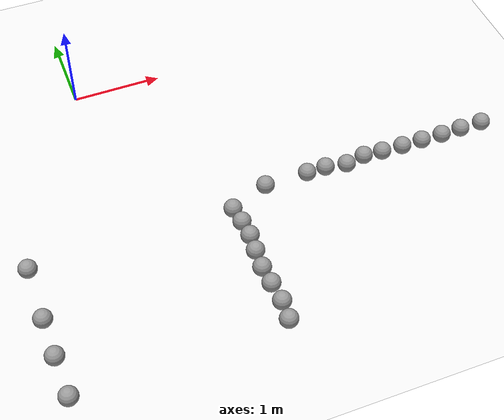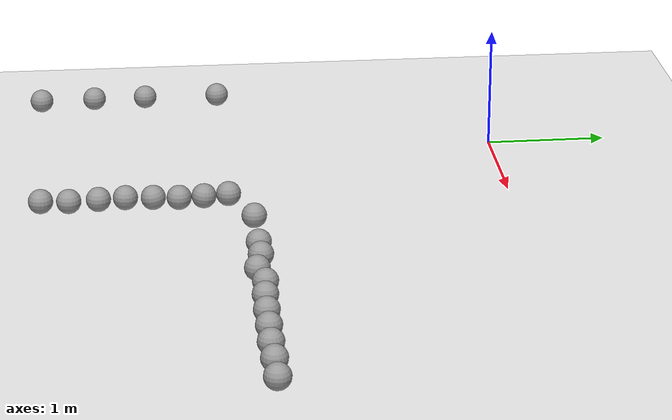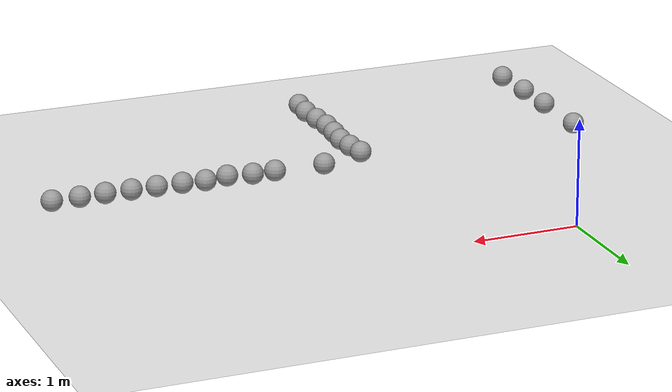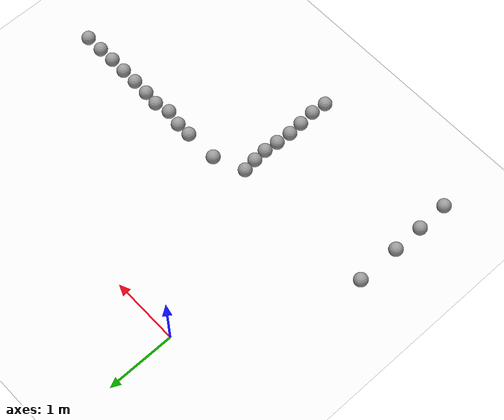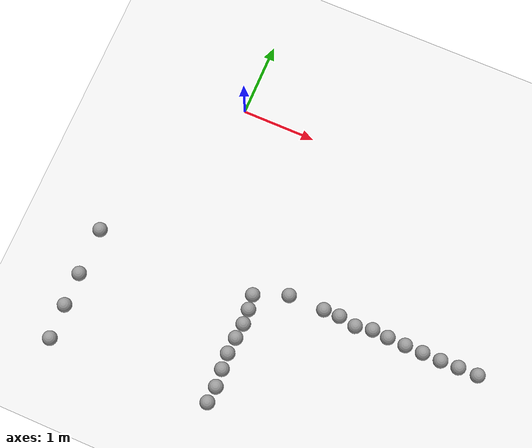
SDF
<sdf version="1.7">
 <world name="default">
  <model name="ground_plane">
   <static>1</static>
   <link name="link">
    <collision name="collision">
     <geometry><plane><normal>0 0 1</normal><size>100 100</size></plane></geometry>
     <surface>
      <contact><collide_bitmask>65535</collide_bitmask></contact>
      <friction><ode><mu>100</mu><mu2>50</mu2></ode></friction>
     </surface>
    </collision>
    <visual name="visual">
     <cast_shadows>0</cast_shadows>
     <geometry><plane><normal>0 0 1</normal><size>100 100</size></plane></geometry>
     <material>
      <script><uri>file://media/materials/scripts/gazebo.material</uri><name>Gazebo/White</name></script>
     </material>
    </visual>
   </link>
  </model>
  <model name="sphere_7">
   <link name="link_0">
    <inertial>
     <mass>1</mass>
     <inertia><ixx>0.1</ixx><ixy>0</ixy><ixz>0</ixz><iyy>0.1</iyy><iyz>0</iyz><izz>0.1</izz></inertia>
    </inertial>
    <visual name="visual">
     <geometry><sphere><radius>0.1</radius></sphere></geometry>
     <material>
      <lighting>1</lighting>
      <script><uri>file://media/materials/scripts/gazebo.material</uri><name>Gazebo/Grey</name></script>
      <shader type="pixel"><normal_map>__default__</normal_map></shader>
      <ambient>0.3 0.3 0.3 1</ambient>
      <diffuse>0.7 0.7 0.7 1</diffuse>
      <specular>0.01 0.01 0.01 1</specular>
      <emissive>0 0 0 1</emissive>
     </material>
    </visual>
    <collision name="collision">
     <geometry><sphere><radius>0.1</radius></sphere></geometry>
     <surface>
      <friction>
       <ode><mu>1</mu><mu2>1</mu2><fdir1>0 0 0</fdir1><slip1>0</slip1><slip2>0</slip2></ode>
       <torsional>
        <coefficient>1</coefficient>
        <patch_radius>0</patch_radius>
        <surface_radius>0</surface_radius>
        <use_patch_radius>1</use_patch_radius>
        <ode><slip>0</slip></ode>
       </torsional>
      </friction>
      <bounce><restitution_coefficient>0</restitution_coefficient><threshold>1e+06</threshold></bounce>
      <contact>
       <collide_without_contact>0</collide_without_contact>
       <collide_without_contact_bitmask>1</collide_without_contact_bitmask>
       <collide_bitmask>1</collide_bitmask>
       <ode>
        <soft_cfm>0</soft_cfm>
        <soft_erp>0.2</soft_erp>
        <kp>1e+13</kp>
        <kd>1</kd>
        <max_vel>0.01</max_vel>
        <min_depth>0</min_depth>
       </ode>
       <bullet>
        <split_impulse>1</split_impulse>
        <split_impulse_penetration_threshold>-0.01</split_impulse_penetration_threshold>
        <soft_cfm>0</soft_cfm>
        <soft_erp>0.2</soft_erp>
        <kp>1e+13</kp>
        <kd>1</kd>
       </bullet>
      </contact>
     </surface>
    </collision>
   </link>
   <static>0</static>
   <pose>-1.07358 -3.84349 0.1 0 -0 0</pose>
  </model>
  <model name="sphere_9">
   <link name="link_0">
    <inertial>
     <mass>1</mass>
     <inertia><ixx>0.1</ixx><ixy>0</ixy><ixz>0</ixz><iyy>0.1</iyy><iyz>0</iyz><izz>0.1</izz></inertia>
    </inertial>
    <visual name="visual">
     <geometry><sphere><radius>0.1</radius></sphere></geometry>
     <material>
      <lighting>1</lighting>
      <script><uri>file://media/materials/scripts/gazebo.material</uri><name>Gazebo/Grey</name></script>
      <shader type="pixel"><normal_map>__default__</normal_map></shader>
      <ambient>0.3 0.3 0.3 1</ambient>
      <diffuse>0.7 0.7 0.7 1</diffuse>
      <specular>0.01 0.01 0.01 1</specular>
      <emissive>0 0 0 1</emissive>
     </material>
    </visual>
    <collision name="collision">
     <geometry><sphere><radius>0.1</radius></sphere></geometry>
     <surface>
      <friction>
       <ode><mu>1</mu><mu2>1</mu2><fdir1>0 0 0</fdir1><slip1>0</slip1><slip2>0</slip2></ode>
       <torsional>
        <coefficient>1</coefficient>
        <patch_radius>0</patch_radius>
        <surface_radius>0</surface_radius>
        <use_patch_radius>1</use_patch_radius>
        <ode><slip>0</slip></ode>
       </torsional>
      </friction>
      <bounce><restitution_coefficient>0</restitution_coefficient><threshold>1e+06</threshold></bounce>
      <contact>
       <collide_without_contact>0</collide_without_contact>
       <collide_without_contact_bitmask>1</collide_without_contact_bitmask>
       <collide_bitmask>1</collide_bitmask>
       <ode>
        <soft_cfm>0</soft_cfm>
        <soft_erp>0.2</soft_erp>
        <kp>1e+13</kp>
        <kd>1</kd>
        <max_vel>0.01</max_vel>
        <min_depth>0</min_depth>
       </ode>
       <bullet>
        <split_impulse>1</split_impulse>
        <split_impulse_penetration_threshold>-0.01</split_impulse_penetration_threshold>
        <soft_cfm>0</soft_cfm>
        <soft_erp>0.2</soft_erp>
        <kp>1e+13</kp>
        <kd>1</kd>
       </bullet>
      </contact>
     </surface>
    </collision>
   </link>
   <static>0</static>
   <pose>-1.08701 -3.37767 0.1 0 -0 0</pose>
  </model>
  <model name="sphere_11">
   <link name="link_0">
    <inertial>
     <mass>1</mass>
     <inertia><ixx>0.1</ixx><ixy>0</ixy><ixz>0</ixz><iyy>0.1</iyy><iyz>0</iyz><izz>0.1</izz></inertia>
    </inertial>
    <visual name="visual">
     <geometry><sphere><radius>0.1</radius></sphere></geometry>
     <material>
      <lighting>1</lighting>
      <script><uri>file://media/materials/scripts/gazebo.material</uri><name>Gazebo/Grey</name></script>
      <shader type="pixel"><normal_map>__default__</normal_map></shader>
      <ambient>0.3 0.3 0.3 1</ambient>
      <diffuse>0.7 0.7 0.7 1</diffuse>
      <specular>0.01 0.01 0.01 1</specular>
      <emissive>0 0 0 1</emissive>
     </material>
    </visual>
    <collision name="collision">
     <geometry><sphere><radius>0.1</radius></sphere></geometry>
     <surface>
      <friction>
       <ode><mu>1</mu><mu2>1</mu2><fdir1>0 0 0</fdir1><slip1>0</slip1><slip2>0</slip2></ode>
       <torsional>
        <coefficient>1</coefficient>
        <patch_radius>0</patch_radius>
        <surface_radius>0</surface_radius>
        <use_patch_radius>1</use_patch_radius>
        <ode><slip>0</slip></ode>
       </torsional>
      </friction>
      <bounce><restitution_coefficient>0</restitution_coefficient><threshold>1e+06</threshold></bounce>
      <contact>
       <collide_without_contact>0</collide_without_contact>
       <collide_without_contact_bitmask>1</collide_without_contact_bitmask>
       <collide_bitmask>1</collide_bitmask>
       <ode>
        <soft_cfm>0</soft_cfm>
        <soft_erp>0.2</soft_erp>
        <kp>1e+13</kp>
        <kd>1</kd>
        <max_vel>0.01</max_vel>
        <min_depth>0</min_depth>
       </ode>
       <bullet>
        <split_impulse>1</split_impulse>
        <split_impulse_penetration_threshold>-0.01</split_impulse_penetration_threshold>
        <soft_cfm>0</soft_cfm>
        <soft_erp>0.2</soft_erp>
        <kp>1e+13</kp>
        <kd>1</kd>
       </bullet>
      </contact>
     </surface>
    </collision>
   </link>
   <static>0</static>
   <pose>-1.09082 -2.92679 0.1 0 -0 0</pose>
  </model>
  <model name="sphere_14">
   <link name="link_0">
    <inertial>
     <mass>1</mass>
     <inertia><ixx>0.1</ixx><ixy>0</ixy><ixz>0</ixz><iyy>0.1</iyy><iyz>0</iyz><izz>0.1</izz></inertia>
    </inertial>
    <visual name="visual">
     <geometry><sphere><radius>0.1</radius></sphere></geometry>
     <material>
      <lighting>1</lighting>
      <script><uri>file://media/materials/scripts/gazebo.material</uri><name>Gazebo/Grey</name></script>
      <shader type="pixel"><normal_map>__default__</normal_map></shader>
      <ambient>0.3 0.3 0.3 1</ambient>
      <diffuse>0.7 0.7 0.7 1</diffuse>
      <specular>0.01 0.01 0.01 1</specular>
      <emissive>0 0 0 1</emissive>
     </material>
    </visual>
    <collision name="collision">
     <geometry><sphere><radius>0.1</radius></sphere></geometry>
     <surface>
      <friction>
       <ode><mu>1</mu><mu2>1</mu2><fdir1>0 0 0</fdir1><slip1>0</slip1><slip2>0</slip2></ode>
       <torsional>
        <coefficient>1</coefficient>
        <patch_radius>0</patch_radius>
        <surface_radius>0</surface_radius>
        <use_patch_radius>1</use_patch_radius>
        <ode><slip>0</slip></ode>
       </torsional>
      </friction>
      <bounce><restitution_coefficient>0</restitution_coefficient><threshold>1e+06</threshold></bounce>
      <contact>
       <collide_without_contact>0</collide_without_contact>
       <collide_without_contact_bitmask>1</collide_without_contact_bitmask>
       <collide_bitmask>1</collide_bitmask>
       <ode>
        <soft_cfm>0</soft_cfm>
        <soft_erp>0.2</soft_erp>
        <kp>1e+13</kp>
        <kd>1</kd>
        <max_vel>0.01</max_vel>
        <min_depth>0</min_depth>
       </ode>
       <bullet>
        <split_impulse>1</split_impulse>
        <split_impulse_penetration_threshold>-0.01</split_impulse_penetration_threshold>
        <soft_cfm>0</soft_cfm>
        <soft_erp>0.2</soft_erp>
        <kp>1e+13</kp>
        <kd>1</kd>
       </bullet>
      </contact>
     </surface>
    </collision>
   </link>
   <static>0</static>
   <pose>-1.09015 -2.2869 0.1 0.054807 -0.004576 0.000566</pose>
  </model>
  <model name="sphere_34">
   <link name="link_0">
    <inertial>
     <mass>1</mass>
     <inertia><ixx>0.1</ixx><ixy>0</ixy><ixz>0</ixz><iyy>0.1</iyy><iyz>0</iyz><izz>0.1</izz></inertia>
    </inertial>
    <visual name="visual">
     <geometry><sphere><radius>0.1</radius></sphere></geometry>
     <material>
      <lighting>1</lighting>
      <script><uri>file://media/materials/scripts/gazebo.material</uri><name>Gazebo/Grey</name></script>
      <shader type="pixel"><normal_map>__default__</normal_map></shader>
      <ambient>0.3 0.3 0.3 1</ambient>
      <diffuse>0.7 0.7 0.7 1</diffuse>
      <specular>0.01 0.01 0.01 1</specular>
      <emissive>0 0 0 1</emissive>
     </material>
    </visual>
    <collision name="collision">
     <geometry><sphere><radius>0.1</radius></sphere></geometry>
     <surface>
      <friction>
       <ode><mu>1</mu><mu2>1</mu2><fdir1>0 0 0</fdir1><slip1>0</slip1><slip2>0</slip2></ode>
       <torsional>
        <coefficient>1</coefficient>
        <patch_radius>0</patch_radius>
        <surface_radius>0</surface_radius>
        <use_patch_radius>1</use_patch_radius>
        <ode><slip>0</slip></ode>
       </torsional>
      </friction>
      <bounce><restitution_coefficient>0</restitution_coefficient><threshold>1e+06</threshold></bounce>
      <contact>
       <collide_without_contact>0</collide_without_contact>
       <collide_without_contact_bitmask>1</collide_without_contact_bitmask>
       <collide_bitmask>1</collide_bitmask>
       <ode>
        <soft_cfm>0</soft_cfm>
        <soft_erp>0.2</soft_erp>
        <kp>1e+13</kp>
        <kd>1</kd>
        <max_vel>0.01</max_vel>
        <min_depth>0</min_depth>
       </ode>
       <bullet>
        <split_impulse>1</split_impulse>
        <split_impulse_penetration_threshold>-0.01</split_impulse_penetration_threshold>
        <soft_cfm>0</soft_cfm>
        <soft_erp>0.2</soft_erp>
        <kp>1e+13</kp>
        <kd>1</kd>
       </bullet>
      </contact>
     </surface>
    </collision>
   </link>
   <static>0</static>
   <pose>1.10487 -2.29479 0.1 0.017207 -0.001358 0.002524</pose>
  </model>
  <model name="sphere_35">
   <link name="link_0">
    <inertial>
     <mass>1</mass>
     <inertia><ixx>0.1</ixx><ixy>0</ixy><ixz>0</ixz><iyy>0.1</iyy><iyz>0</iyz><izz>0.1</izz></inertia>
    </inertial>
    <visual name="visual">
     <geometry><sphere><radius>0.1</radius></sphere></geometry>
     <material>
      <lighting>1</lighting>
      <script><uri>file://media/materials/scripts/gazebo.material</uri><name>Gazebo/Grey</name></script>
      <shader type="pixel"><normal_map>__default__</normal_map></shader>
      <ambient>0.3 0.3 0.3 1</ambient>
      <diffuse>0.7 0.7 0.7 1</diffuse>
      <specular>0.01 0.01 0.01 1</specular>
      <emissive>0 0 0 1</emissive>
     </material>
    </visual>
    <collision name="collision">
     <geometry><sphere><radius>0.1</radius></sphere></geometry>
     <surface>
      <friction>
       <ode><mu>1</mu><mu2>1</mu2><fdir1>0 0 0</fdir1><slip1>0</slip1><slip2>0</slip2></ode>
       <torsional>
        <coefficient>1</coefficient>
        <patch_radius>0</patch_radius>
        <surface_radius>0</surface_radius>
        <use_patch_radius>1</use_patch_radius>
        <ode><slip>0</slip></ode>
       </torsional>
      </friction>
      <bounce><restitution_coefficient>0</restitution_coefficient><threshold>1e+06</threshold></bounce>
      <contact>
       <collide_without_contact>0</collide_without_contact>
       <collide_without_contact_bitmask>1</collide_without_contact_bitmask>
       <collide_bitmask>1</collide_bitmask>
       <ode>
        <soft_cfm>0</soft_cfm>
        <soft_erp>0.2</soft_erp>
        <kp>1e+13</kp>
        <kd>1</kd>
        <max_vel>0.01</max_vel>
        <min_depth>0</min_depth>
       </ode>
       <bullet>
        <split_impulse>1</split_impulse>
        <split_impulse_penetration_threshold>-0.01</split_impulse_penetration_threshold>
        <soft_cfm>0</soft_cfm>
        <soft_erp>0.2</soft_erp>
        <kp>1e+13</kp>
        <kd>1</kd>
       </bullet>
      </contact>
     </surface>
    </collision>
   </link>
   <static>0</static>
   <pose>1.1309 -2.49326 0.1 -0.103663 0.025602 0.030256</pose>
  </model>
  <model name="sphere_36">
   <link name="link_0">
    <inertial>
     <mass>1</mass>
     <inertia><ixx>0.1</ixx><ixy>0</ixy><ixz>0</ixz><iyy>0.1</iyy><iyz>0</iyz><izz>0.1</izz></inertia>
    </inertial>
    <visual name="visual">
     <geometry><sphere><radius>0.1</radius></sphere></geometry>
     <material>
      <lighting>1</lighting>
      <script><uri>file://media/materials/scripts/gazebo.material</uri><name>Gazebo/Grey</name></script>
      <shader type="pixel"><normal_map>__default__</normal_map></shader>
      <ambient>0.3 0.3 0.3 1</ambient>
      <diffuse>0.7 0.7 0.7 1</diffuse>
      <specular>0.01 0.01 0.01 1</specular>
      <emissive>0 0 0 1</emissive>
     </material>
    </visual>
    <collision name="collision">
     <geometry><sphere><radius>0.1</radius></sphere></geometry>
     <surface>
      <friction>
       <ode><mu>1</mu><mu2>1</mu2><fdir1>0 0 0</fdir1><slip1>0</slip1><slip2>0</slip2></ode>
       <torsional>
        <coefficient>1</coefficient>
        <patch_radius>0</patch_radius>
        <surface_radius>0</surface_radius>
        <use_patch_radius>1</use_patch_radius>
        <ode><slip>0</slip></ode>
       </torsional>
      </friction>
      <bounce><restitution_coefficient>0</restitution_coefficient><threshold>1e+06</threshold></bounce>
      <contact>
       <collide_without_contact>0</collide_without_contact>
       <collide_without_contact_bitmask>1</collide_without_contact_bitmask>
       <collide_bitmask>1</collide_bitmask>
       <ode>
        <soft_cfm>0</soft_cfm>
        <soft_erp>0.2</soft_erp>
        <kp>1e+13</kp>
        <kd>1</kd>
        <max_vel>0.01</max_vel>
        <min_depth>0</min_depth>
       </ode>
       <bullet>
        <split_impulse>1</split_impulse>
        <split_impulse_penetration_threshold>-0.01</split_impulse_penetration_threshold>
        <soft_cfm>0</soft_cfm>
        <soft_erp>0.2</soft_erp>
        <kp>1e+13</kp>
        <kd>1</kd>
       </bullet>
      </contact>
     </surface>
    </collision>
   </link>
   <static>0</static>
   <pose>1.14408 -2.693 0.1 0.003598 0.046404 0.000405</pose>
  </model>
  <model name="sphere_37">
   <link name="link_0">
    <inertial>
     <mass>1</mass>
     <inertia><ixx>0.1</ixx><ixy>0</ixy><ixz>0</ixz><iyy>0.1</iyy><iyz>0</iyz><izz>0.1</izz></inertia>
    </inertial>
    <visual name="visual">
     <geometry><sphere><radius>0.1</radius></sphere></geometry>
     <material>
      <lighting>1</lighting>
      <script><uri>file://media/materials/scripts/gazebo.material</uri><name>Gazebo/Grey</name></script>
      <shader type="pixel"><normal_map>__default__</normal_map></shader>
      <ambient>0.3 0.3 0.3 1</ambient>
      <diffuse>0.7 0.7 0.7 1</diffuse>
      <specular>0.01 0.01 0.01 1</specular>
      <emissive>0 0 0 1</emissive>
     </material>
    </visual>
    <collision name="collision">
     <geometry><sphere><radius>0.1</radius></sphere></geometry>
     <surface>
      <friction>
       <ode><mu>1</mu><mu2>1</mu2><fdir1>0 0 0</fdir1><slip1>0</slip1><slip2>0</slip2></ode>
       <torsional>
        <coefficient>1</coefficient>
        <patch_radius>0</patch_radius>
        <surface_radius>0</surface_radius>
        <use_patch_radius>1</use_patch_radius>
        <ode><slip>0</slip></ode>
       </torsional>
      </friction>
      <bounce><restitution_coefficient>0</restitution_coefficient><threshold>1e+06</threshold></bounce>
      <contact>
       <collide_without_contact>0</collide_without_contact>
       <collide_without_contact_bitmask>1</collide_without_contact_bitmask>
       <collide_bitmask>1</collide_bitmask>
       <ode>
        <soft_cfm>0</soft_cfm>
        <soft_erp>0.2</soft_erp>
        <kp>1e+13</kp>
        <kd>1</kd>
        <max_vel>0.01</max_vel>
        <min_depth>0</min_depth>
       </ode>
       <bullet>
        <split_impulse>1</split_impulse>
        <split_impulse_penetration_threshold>-0.01</split_impulse_penetration_threshold>
        <soft_cfm>0</soft_cfm>
        <soft_erp>0.2</soft_erp>
        <kp>1e+13</kp>
        <kd>1</kd>
       </bullet>
      </contact>
     </surface>
    </collision>
   </link>
   <static>0</static>
   <pose>1.12535 -2.89863 0.1 0.168242 0.012729 -0.026032</pose>
  </model>
  <model name="sphere_38">
   <link name="link_0">
    <inertial>
     <mass>1</mass>
     <inertia><ixx>0.1</ixx><ixy>0</ixy><ixz>0</ixz><iyy>0.1</iyy><iyz>0</iyz><izz>0.1</izz></inertia>
    </inertial>
    <visual name="visual">
     <geometry><sphere><radius>0.1</radius></sphere></geometry>
     <material>
      <lighting>1</lighting>
      <script><uri>file://media/materials/scripts/gazebo.material</uri><name>Gazebo/Grey</name></script>
      <shader type="pixel"><normal_map>__default__</normal_map></shader>
      <ambient>0.3 0.3 0.3 1</ambient>
      <diffuse>0.7 0.7 0.7 1</diffuse>
      <specular>0.01 0.01 0.01 1</specular>
      <emissive>0 0 0 1</emissive>
     </material>
    </visual>
    <collision name="collision">
     <geometry><sphere><radius>0.1</radius></sphere></geometry>
     <surface>
      <friction>
       <ode><mu>1</mu><mu2>1</mu2><fdir1>0 0 0</fdir1><slip1>0</slip1><slip2>0</slip2></ode>
       <torsional>
        <coefficient>1</coefficient>
        <patch_radius>0</patch_radius>
        <surface_radius>0</surface_radius>
        <use_patch_radius>1</use_patch_radius>
        <ode><slip>0</slip></ode>
       </torsional>
      </friction>
      <bounce><restitution_coefficient>0</restitution_coefficient><threshold>1e+06</threshold></bounce>
      <contact>
       <collide_without_contact>0</collide_without_contact>
       <collide_without_contact_bitmask>1</collide_without_contact_bitmask>
       <collide_bitmask>1</collide_bitmask>
       <ode>
        <soft_cfm>0</soft_cfm>
        <soft_erp>0.2</soft_erp>
        <kp>1e+13</kp>
        <kd>1</kd>
        <max_vel>0.01</max_vel>
        <min_depth>0</min_depth>
       </ode>
       <bullet>
        <split_impulse>1</split_impulse>
        <split_impulse_penetration_threshold>-0.01</split_impulse_penetration_threshold>
        <soft_cfm>0</soft_cfm>
        <soft_erp>0.2</soft_erp>
        <kp>1e+13</kp>
        <kd>1</kd>
       </bullet>
      </contact>
     </surface>
    </collision>
   </link>
   <static>0</static>
   <pose>1.11071 -3.12075 0.1 0 -0 0</pose>
  </model>
  <model name="sphere_39">
   <link name="link_0">
    <inertial>
     <mass>1</mass>
     <inertia><ixx>0.1</ixx><ixy>0</ixy><ixz>0</ixz><iyy>0.1</iyy><iyz>0</iyz><izz>0.1</izz></inertia>
    </inertial>
    <visual name="visual">
     <geometry><sphere><radius>0.1</radius></sphere></geometry>
     <material>
      <lighting>1</lighting>
      <script><uri>file://media/materials/scripts/gazebo.material</uri><name>Gazebo/Grey</name></script>
      <shader type="pixel"><normal_map>__default__</normal_map></shader>
      <ambient>0.3 0.3 0.3 1</ambient>
      <diffuse>0.7 0.7 0.7 1</diffuse>
      <specular>0.01 0.01 0.01 1</specular>
      <emissive>0 0 0 1</emissive>
     </material>
    </visual>
    <collision name="collision">
     <geometry><sphere><radius>0.1</radius></sphere></geometry>
     <surface>
      <friction>
       <ode><mu>1</mu><mu2>1</mu2><fdir1>0 0 0</fdir1><slip1>0</slip1><slip2>0</slip2></ode>
       <torsional>
        <coefficient>1</coefficient>
        <patch_radius>0</patch_radius>
        <surface_radius>0</surface_radius>
        <use_patch_radius>1</use_patch_radius>
        <ode><slip>0</slip></ode>
       </torsional>
      </friction>
      <bounce><restitution_coefficient>0</restitution_coefficient><threshold>1e+06</threshold></bounce>
      <contact>
       <collide_without_contact>0</collide_without_contact>
       <collide_without_contact_bitmask>1</collide_without_contact_bitmask>
       <collide_bitmask>1</collide_bitmask>
       <ode>
        <soft_cfm>0</soft_cfm>
        <soft_erp>0.2</soft_erp>
        <kp>1e+13</kp>
        <kd>1</kd>
        <max_vel>0.01</max_vel>
        <min_depth>0</min_depth>
       </ode>
       <bullet>
        <split_impulse>1</split_impulse>
        <split_impulse_penetration_threshold>-0.01</split_impulse_penetration_threshold>
        <soft_cfm>0</soft_cfm>
        <soft_erp>0.2</soft_erp>
        <kp>1e+13</kp>
        <kd>1</kd>
       </bullet>
      </contact>
     </surface>
    </collision>
   </link>
   <static>0</static>
   <pose>1.12497 -3.33582 0.1 0 -0 0</pose>
  </model>
  <model name="sphere_40">
   <link name="link_0">
    <inertial>
     <mass>1</mass>
     <inertia><ixx>0.1</ixx><ixy>0</ixy><ixz>0</ixz><iyy>0.1</iyy><iyz>0</iyz><izz>0.1</izz></inertia>
    </inertial>
    <visual name="visual">
     <geometry><sphere><radius>0.1</radius></sphere></geometry>
     <material>
      <lighting>1</lighting>
      <script><uri>file://media/materials/scripts/gazebo.material</uri><name>Gazebo/Grey</name></script>
      <shader type="pixel"><normal_map>__default__</normal_map></shader>
      <ambient>0.3 0.3 0.3 1</ambient>
      <diffuse>0.7 0.7 0.7 1</diffuse>
      <specular>0.01 0.01 0.01 1</specular>
      <emissive>0 0 0 1</emissive>
     </material>
    </visual>
    <collision name="collision">
     <geometry><sphere><radius>0.1</radius></sphere></geometry>
     <surface>
      <friction>
       <ode><mu>1</mu><mu2>1</mu2><fdir1>0 0 0</fdir1><slip1>0</slip1><slip2>0</slip2></ode>
       <torsional>
        <coefficient>1</coefficient>
        <patch_radius>0</patch_radius>
        <surface_radius>0</surface_radius>
        <use_patch_radius>1</use_patch_radius>
        <ode><slip>0</slip></ode>
       </torsional>
      </friction>
      <bounce><restitution_coefficient>0</restitution_coefficient><threshold>1e+06</threshold></bounce>
      <contact>
       <collide_without_contact>0</collide_without_contact>
       <collide_without_contact_bitmask>1</collide_without_contact_bitmask>
       <collide_bitmask>1</collide_bitmask>
       <ode>
        <soft_cfm>0</soft_cfm>
        <soft_erp>0.2</soft_erp>
        <kp>1e+13</kp>
        <kd>1</kd>
        <max_vel>0.01</max_vel>
        <min_depth>0</min_depth>
       </ode>
       <bullet>
        <split_impulse>1</split_impulse>
        <split_impulse_penetration_threshold>-0.01</split_impulse_penetration_threshold>
        <soft_cfm>0</soft_cfm>
        <soft_erp>0.2</soft_erp>
        <kp>1e+13</kp>
        <kd>1</kd>
       </bullet>
      </contact>
     </surface>
    </collision>
   </link>
   <static>0</static>
   <pose>1.14355 -3.57163 0.1 0 -0 0</pose>
  </model>
  <model name="sphere_41">
   <link name="link_0">
    <inertial>
     <mass>1</mass>
     <inertia><ixx>0.1</ixx><ixy>0</ixy><ixz>0</ixz><iyy>0.1</iyy><iyz>0</iyz><izz>0.1</izz></inertia>
    </inertial>
    <visual name="visual">
     <geometry><sphere><radius>0.1</radius></sphere></geometry>
     <material>
      <lighting>1</lighting>
      <script><uri>file://media/materials/scripts/gazebo.material</uri><name>Gazebo/Grey</name></script>
      <shader type="pixel"><normal_map>__default__</normal_map></shader>
      <ambient>0.3 0.3 0.3 1</ambient>
      <diffuse>0.7 0.7 0.7 1</diffuse>
      <specular>0.01 0.01 0.01 1</specular>
      <emissive>0 0 0 1</emissive>
     </material>
    </visual>
    <collision name="collision">
     <geometry><sphere><radius>0.1</radius></sphere></geometry>
     <surface>
      <friction>
       <ode><mu>1</mu><mu2>1</mu2><fdir1>0 0 0</fdir1><slip1>0</slip1><slip2>0</slip2></ode>
       <torsional>
        <coefficient>1</coefficient>
        <patch_radius>0</patch_radius>
        <surface_radius>0</surface_radius>
        <use_patch_radius>1</use_patch_radius>
        <ode><slip>0</slip></ode>
       </torsional>
      </friction>
      <bounce><restitution_coefficient>0</restitution_coefficient><threshold>1e+06</threshold></bounce>
      <contact>
       <collide_without_contact>0</collide_without_contact>
       <collide_without_contact_bitmask>1</collide_without_contact_bitmask>
       <collide_bitmask>1</collide_bitmask>
       <ode>
        <soft_cfm>0</soft_cfm>
        <soft_erp>0.2</soft_erp>
        <kp>1e+13</kp>
        <kd>1</kd>
        <max_vel>0.01</max_vel>
        <min_depth>0</min_depth>
       </ode>
       <bullet>
        <split_impulse>1</split_impulse>
        <split_impulse_penetration_threshold>-0.01</split_impulse_penetration_threshold>
        <soft_cfm>0</soft_cfm>
        <soft_erp>0.2</soft_erp>
        <kp>1e+13</kp>
        <kd>1</kd>
       </bullet>
      </contact>
     </surface>
    </collision>
   </link>
   <static>0</static>
   <pose>1.12477 -3.79542 0.1 0 -0 0</pose>
  </model>
  <model name="sphere_50">
   <link name="link_0">
    <inertial>
     <mass>1</mass>
     <inertia><ixx>0.1</ixx><ixy>0</ixy><ixz>0</ixz><iyy>0.1</iyy><iyz>0</iyz><izz>0.1</izz></inertia>
    </inertial>
    <visual name="visual">
     <geometry><sphere><radius>0.1</radius></sphere></geometry>
     <material>
      <lighting>1</lighting>
      <script><uri>file://media/materials/scripts/gazebo.material</uri><name>Gazebo/Grey</name></script>
      <shader type="pixel"><normal_map>__default__</normal_map></shader>
      <ambient>0.3 0.3 0.3 1</ambient>
      <diffuse>0.7 0.7 0.7 1</diffuse>
      <specular>0.01 0.01 0.01 1</specular>
      <emissive>0 0 0 1</emissive>
     </material>
    </visual>
    <collision name="collision">
     <geometry><sphere><radius>0.1</radius></sphere></geometry>
     <surface>
      <friction>
       <ode><mu>1</mu><mu2>1</mu2><fdir1>0 0 0</fdir1><slip1>0</slip1><slip2>0</slip2></ode>
       <torsional>
        <coefficient>1</coefficient>
        <patch_radius>0</patch_radius>
        <surface_radius>0</surface_radius>
        <use_patch_radius>1</use_patch_radius>
        <ode><slip>0</slip></ode>
       </torsional>
      </friction>
      <bounce><restitution_coefficient>0</restitution_coefficient><threshold>1e+06</threshold></bounce>
      <contact>
       <collide_without_contact>0</collide_without_contact>
       <collide_without_contact_bitmask>1</collide_without_contact_bitmask>
       <collide_bitmask>1</collide_bitmask>
       <ode>
        <soft_cfm>0</soft_cfm>
        <soft_erp>0.2</soft_erp>
        <kp>1e+13</kp>
        <kd>1</kd>
        <max_vel>0.01</max_vel>
        <min_depth>0</min_depth>
       </ode>
       <bullet>
        <split_impulse>1</split_impulse>
        <split_impulse_penetration_threshold>-0.01</split_impulse_penetration_threshold>
        <soft_cfm>0</soft_cfm>
        <soft_erp>0.2</soft_erp>
        <kp>1e+13</kp>
        <kd>1</kd>
       </bullet>
      </contact>
     </surface>
    </collision>
   </link>
   <static>0</static>
   <pose>1.54416 -2.11569 0.1 0 -0 0</pose>
  </model>
  <model name="sphere_52">
   <link name="link_0">
    <inertial>
     <mass>1</mass>
     <inertia><ixx>0.1</ixx><ixy>0</ixy><ixz>0</ixz><iyy>0.1</iyy><iyz>0</iyz><izz>0.1</izz></inertia>
    </inertial>
    <visual name="visual">
     <geometry><sphere><radius>0.1</radius></sphere></geometry>
     <material>
      <lighting>1</lighting>
      <script><uri>file://media/materials/scripts/gazebo.material</uri><name>Gazebo/Grey</name></script>
      <shader type="pixel"><normal_map>__default__</normal_map></shader>
      <ambient>0.3 0.3 0.3 1</ambient>
      <diffuse>0.7 0.7 0.7 1</diffuse>
      <specular>0.01 0.01 0.01 1</specular>
      <emissive>0 0 0 1</emissive>
     </material>
    </visual>
    <collision name="collision">
     <geometry><sphere><radius>0.1</radius></sphere></geometry>
     <surface>
      <friction>
       <ode><mu>1</mu><mu2>1</mu2><fdir1>0 0 0</fdir1><slip1>0</slip1><slip2>0</slip2></ode>
       <torsional>
        <coefficient>1</coefficient>
        <patch_radius>0</patch_radius>
        <surface_radius>0</surface_radius>
        <use_patch_radius>1</use_patch_radius>
        <ode><slip>0</slip></ode>
       </torsional>
      </friction>
      <bounce><restitution_coefficient>0</restitution_coefficient><threshold>1e+06</threshold></bounce>
      <contact>
       <collide_without_contact>0</collide_without_contact>
       <collide_without_contact_bitmask>1</collide_without_contact_bitmask>
       <collide_bitmask>1</collide_bitmask>
       <ode>
        <soft_cfm>0</soft_cfm>
        <soft_erp>0.2</soft_erp>
        <kp>1e+13</kp>
        <kd>1</kd>
        <max_vel>0.01</max_vel>
        <min_depth>0</min_depth>
       </ode>
       <bullet>
        <split_impulse>1</split_impulse>
        <split_impulse_penetration_threshold>-0.01</split_impulse_penetration_threshold>
        <soft_cfm>0</soft_cfm>
        <soft_erp>0.2</soft_erp>
        <kp>1e+13</kp>
        <kd>1</kd>
       </bullet>
      </contact>
     </surface>
    </collision>
   </link>
   <static>0</static>
   <pose>2.03098 -2.11168 0.1 0 -0 0</pose>
  </model>
  <model name="sphere_53">
   <link name="link_0">
    <inertial>
     <mass>1</mass>
     <inertia><ixx>0.1</ixx><ixy>0</ixy><ixz>0</ixz><iyy>0.1</iyy><iyz>0</iyz><izz>0.1</izz></inertia>
    </inertial>
    <visual name="visual">
     <geometry><sphere><radius>0.1</radius></sphere></geometry>
     <material>
      <lighting>1</lighting>
      <script><uri>file://media/materials/scripts/gazebo.material</uri><name>Gazebo/Grey</name></script>
      <shader type="pixel"><normal_map>__default__</normal_map></shader>
      <ambient>0.3 0.3 0.3 1</ambient>
      <diffuse>0.7 0.7 0.7 1</diffuse>
      <specular>0.01 0.01 0.01 1</specular>
      <emissive>0 0 0 1</emissive>
     </material>
    </visual>
    <collision name="collision">
     <geometry><sphere><radius>0.1</radius></sphere></geometry>
     <surface>
      <friction>
       <ode><mu>1</mu><mu2>1</mu2><fdir1>0 0 0</fdir1><slip1>0</slip1><slip2>0</slip2></ode>
       <torsional>
        <coefficient>1</coefficient>
        <patch_radius>0</patch_radius>
        <surface_radius>0</surface_radius>
        <use_patch_radius>1</use_patch_radius>
        <ode><slip>0</slip></ode>
       </torsional>
      </friction>
      <bounce><restitution_coefficient>0</restitution_coefficient><threshold>1e+06</threshold></bounce>
      <contact>
       <collide_without_contact>0</collide_without_contact>
       <collide_without_contact_bitmask>1</collide_without_contact_bitmask>
       <collide_bitmask>1</collide_bitmask>
       <ode>
        <soft_cfm>0</soft_cfm>
        <soft_erp>0.2</soft_erp>
        <kp>1e+13</kp>
        <kd>1</kd>
        <max_vel>0.01</max_vel>
        <min_depth>0</min_depth>
       </ode>
       <bullet>
        <split_impulse>1</split_impulse>
        <split_impulse_penetration_threshold>-0.01</split_impulse_penetration_threshold>
        <soft_cfm>0</soft_cfm>
        <soft_erp>0.2</soft_erp>
        <kp>1e+13</kp>
        <kd>1</kd>
       </bullet>
      </contact>
     </surface>
    </collision>
   </link>
   <static>0</static>
   <pose>2.24831 -2.10986 0.1 0 -0 0</pose>
  </model>
  <model name="sphere_54">
   <link name="link_0">
    <inertial>
     <mass>1</mass>
     <inertia><ixx>0.1</ixx><ixy>0</ixy><ixz>0</ixz><iyy>0.1</iyy><iyz>0</iyz><izz>0.1</izz></inertia>
    </inertial>
    <visual name="visual">
     <geometry><sphere><radius>0.1</radius></sphere></geometry>
     <material>
      <lighting>1</lighting>
      <script><uri>file://media/materials/scripts/gazebo.material</uri><name>Gazebo/Grey</name></script>
      <shader type="pixel"><normal_map>__default__</normal_map></shader>
      <ambient>0.3 0.3 0.3 1</ambient>
      <diffuse>0.7 0.7 0.7 1</diffuse>
      <specular>0.01 0.01 0.01 1</specular>
      <emissive>0 0 0 1</emissive>
     </material>
    </visual>
    <collision name="collision">
     <geometry><sphere><radius>0.1</radius></sphere></geometry>
     <surface>
      <friction>
       <ode><mu>1</mu><mu2>1</mu2><fdir1>0 0 0</fdir1><slip1>0</slip1><slip2>0</slip2></ode>
       <torsional>
        <coefficient>1</coefficient>
        <patch_radius>0</patch_radius>
        <surface_radius>0</surface_radius>
        <use_patch_radius>1</use_patch_radius>
        <ode><slip>0</slip></ode>
       </torsional>
      </friction>
      <bounce><restitution_coefficient>0</restitution_coefficient><threshold>1e+06</threshold></bounce>
      <contact>
       <collide_without_contact>0</collide_without_contact>
       <collide_without_contact_bitmask>1</collide_without_contact_bitmask>
       <collide_bitmask>1</collide_bitmask>
       <ode>
        <soft_cfm>0</soft_cfm>
        <soft_erp>0.2</soft_erp>
        <kp>1e+13</kp>
        <kd>1</kd>
        <max_vel>0.01</max_vel>
        <min_depth>0</min_depth>
       </ode>
       <bullet>
        <split_impulse>1</split_impulse>
        <split_impulse_penetration_threshold>-0.01</split_impulse_penetration_threshold>
        <soft_cfm>0</soft_cfm>
        <soft_erp>0.2</soft_erp>
        <kp>1e+13</kp>
        <kd>1</kd>
       </bullet>
      </contact>
     </surface>
    </collision>
   </link>
   <static>0</static>
   <pose>2.4834 -2.15139 0.1 0 -0 0</pose>
  </model>
  <model name="sphere_55">
   <link name="link_0">
    <inertial>
     <mass>1</mass>
     <inertia><ixx>0.1</ixx><ixy>0</ixy><ixz>0</ixz><iyy>0.1</iyy><iyz>0</iyz><izz>0.1</izz></inertia>
    </inertial>
    <visual name="visual">
     <geometry><sphere><radius>0.1</radius></sphere></geometry>
     <material>
      <lighting>1</lighting>
      <script><uri>file://media/materials/scripts/gazebo.material</uri><name>Gazebo/Grey</name></script>
      <shader type="pixel"><normal_map>__default__</normal_map></shader>
      <ambient>0.3 0.3 0.3 1</ambient>
      <diffuse>0.7 0.7 0.7 1</diffuse>
      <specular>0.01 0.01 0.01 1</specular>
      <emissive>0 0 0 1</emissive>
     </material>
    </visual>
    <collision name="collision">
     <geometry><sphere><radius>0.1</radius></sphere></geometry>
     <surface>
      <friction>
       <ode><mu>1</mu><mu2>1</mu2><fdir1>0 0 0</fdir1><slip1>0</slip1><slip2>0</slip2></ode>
       <torsional>
        <coefficient>1</coefficient>
        <patch_radius>0</patch_radius>
        <surface_radius>0</surface_radius>
        <use_patch_radius>1</use_patch_radius>
        <ode><slip>0</slip></ode>
       </torsional>
      </friction>
      <bounce><restitution_coefficient>0</restitution_coefficient><threshold>1e+06</threshold></bounce>
      <contact>
       <collide_without_contact>0</collide_without_contact>
       <collide_without_contact_bitmask>1</collide_without_contact_bitmask>
       <collide_bitmask>1</collide_bitmask>
       <ode>
        <soft_cfm>0</soft_cfm>
        <soft_erp>0.2</soft_erp>
        <kp>1e+13</kp>
        <kd>1</kd>
        <max_vel>0.01</max_vel>
        <min_depth>0</min_depth>
       </ode>
       <bullet>
        <split_impulse>1</split_impulse>
        <split_impulse_penetration_threshold>-0.01</split_impulse_penetration_threshold>
        <soft_cfm>0</soft_cfm>
        <soft_erp>0.2</soft_erp>
        <kp>1e+13</kp>
        <kd>1</kd>
       </bullet>
      </contact>
     </surface>
    </collision>
   </link>
   <static>0</static>
   <pose>2.70902 -2.10606 0.1 0 -0 0</pose>
  </model>
  <model name="sphere_56">
   <link name="link_0">
    <inertial>
     <mass>1</mass>
     <inertia><ixx>0.1</ixx><ixy>0</ixy><ixz>0</ixz><iyy>0.1</iyy><iyz>0</iyz><izz>0.1</izz></inertia>
    </inertial>
    <visual name="visual">
     <geometry><sphere><radius>0.1</radius></sphere></geometry>
     <material>
      <lighting>1</lighting>
      <script><uri>file://media/materials/scripts/gazebo.material</uri><name>Gazebo/Grey</name></script>
      <shader type="pixel"><normal_map>__default__</normal_map></shader>
      <ambient>0.3 0.3 0.3 1</ambient>
      <diffuse>0.7 0.7 0.7 1</diffuse>
      <specular>0.01 0.01 0.01 1</specular>
      <emissive>0 0 0 1</emissive>
     </material>
    </visual>
    <collision name="collision">
     <geometry><sphere><radius>0.1</radius></sphere></geometry>
     <surface>
      <friction>
       <ode><mu>1</mu><mu2>1</mu2><fdir1>0 0 0</fdir1><slip1>0</slip1><slip2>0</slip2></ode>
       <torsional>
        <coefficient>1</coefficient>
        <patch_radius>0</patch_radius>
        <surface_radius>0</surface_radius>
        <use_patch_radius>1</use_patch_radius>
        <ode><slip>0</slip></ode>
       </torsional>
      </friction>
      <bounce><restitution_coefficient>0</restitution_coefficient><threshold>1e+06</threshold></bounce>
      <contact>
       <collide_without_contact>0</collide_without_contact>
       <collide_without_contact_bitmask>1</collide_without_contact_bitmask>
       <collide_bitmask>1</collide_bitmask>
       <ode>
        <soft_cfm>0</soft_cfm>
        <soft_erp>0.2</soft_erp>
        <kp>1e+13</kp>
        <kd>1</kd>
        <max_vel>0.01</max_vel>
        <min_depth>0</min_depth>
       </ode>
       <bullet>
        <split_impulse>1</split_impulse>
        <split_impulse_penetration_threshold>-0.01</split_impulse_penetration_threshold>
        <soft_cfm>0</soft_cfm>
        <soft_erp>0.2</soft_erp>
        <kp>1e+13</kp>
        <kd>1</kd>
       </bullet>
      </contact>
     </surface>
    </collision>
   </link>
   <static>0</static>
   <pose>2.92652 -2.12166 0.1 0 -0 0</pose>
  </model>
  <model name="sphere_57">
   <link name="link_0">
    <inertial>
     <mass>1</mass>
     <inertia><ixx>0.1</ixx><ixy>0</ixy><ixz>0</ixz><iyy>0.1</iyy><iyz>0</iyz><izz>0.1</izz></inertia>
    </inertial>
    <visual name="visual">
     <geometry><sphere><radius>0.1</radius></sphere></geometry>
     <material>
      <lighting>1</lighting>
      <script><uri>file://media/materials/scripts/gazebo.material</uri><name>Gazebo/Grey</name></script>
      <shader type="pixel"><normal_map>__default__</normal_map></shader>
      <ambient>0.3 0.3 0.3 1</ambient>
      <diffuse>0.7 0.7 0.7 1</diffuse>
      <specular>0.01 0.01 0.01 1</specular>
      <emissive>0 0 0 1</emissive>
     </material>
    </visual>
    <collision name="collision">
     <geometry><sphere><radius>0.1</radius></sphere></geometry>
     <surface>
      <friction>
       <ode><mu>1</mu><mu2>1</mu2><fdir1>0 0 0</fdir1><slip1>0</slip1><slip2>0</slip2></ode>
       <torsional>
        <coefficient>1</coefficient>
        <patch_radius>0</patch_radius>
        <surface_radius>0</surface_radius>
        <use_patch_radius>1</use_patch_radius>
        <ode><slip>0</slip></ode>
       </torsional>
      </friction>
      <bounce><restitution_coefficient>0</restitution_coefficient><threshold>1e+06</threshold></bounce>
      <contact>
       <collide_without_contact>0</collide_without_contact>
       <collide_without_contact_bitmask>1</collide_without_contact_bitmask>
       <collide_bitmask>1</collide_bitmask>
       <ode>
        <soft_cfm>0</soft_cfm>
        <soft_erp>0.2</soft_erp>
        <kp>1e+13</kp>
        <kd>1</kd>
        <max_vel>0.01</max_vel>
        <min_depth>0</min_depth>
       </ode>
       <bullet>
        <split_impulse>1</split_impulse>
        <split_impulse_penetration_threshold>-0.01</split_impulse_penetration_threshold>
        <soft_cfm>0</soft_cfm>
        <soft_erp>0.2</soft_erp>
        <kp>1e+13</kp>
        <kd>1</kd>
       </bullet>
      </contact>
     </surface>
    </collision>
   </link>
   <static>0</static>
   <pose>3.17 -2.12832 0.1 0 -0 0</pose>
  </model>
  <model name="sphere_58">
   <link name="link_0">
    <inertial>
     <mass>1</mass>
     <inertia><ixx>0.1</ixx><ixy>0</ixy><ixz>0</ixz><iyy>0.1</iyy><iyz>0</iyz><izz>0.1</izz></inertia>
    </inertial>
    <visual name="visual">
     <geometry><sphere><radius>0.1</radius></sphere></geometry>
     <material>
      <lighting>1</lighting>
      <script><uri>file://media/materials/scripts/gazebo.material</uri><name>Gazebo/Grey</name></script>
      <shader type="pixel"><normal_map>__default__</normal_map></shader>
      <ambient>0.3 0.3 0.3 1</ambient>
      <diffuse>0.7 0.7 0.7 1</diffuse>
      <specular>0.01 0.01 0.01 1</specular>
      <emissive>0 0 0 1</emissive>
     </material>
    </visual>
    <collision name="collision">
     <geometry><sphere><radius>0.1</radius></sphere></geometry>
     <surface>
      <friction>
       <ode><mu>1</mu><mu2>1</mu2><fdir1>0 0 0</fdir1><slip1>0</slip1><slip2>0</slip2></ode>
       <torsional>
        <coefficient>1</coefficient>
        <patch_radius>0</patch_radius>
        <surface_radius>0</surface_radius>
        <use_patch_radius>1</use_patch_radius>
        <ode><slip>0</slip></ode>
       </torsional>
      </friction>
      <bounce><restitution_coefficient>0</restitution_coefficient><threshold>1e+06</threshold></bounce>
      <contact>
       <collide_without_contact>0</collide_without_contact>
       <collide_without_contact_bitmask>1</collide_without_contact_bitmask>
       <collide_bitmask>1</collide_bitmask>
       <ode>
        <soft_cfm>0</soft_cfm>
        <soft_erp>0.2</soft_erp>
        <kp>1e+13</kp>
        <kd>1</kd>
        <max_vel>0.01</max_vel>
        <min_depth>0</min_depth>
       </ode>
       <bullet>
        <split_impulse>1</split_impulse>
        <split_impulse_penetration_threshold>-0.01</split_impulse_penetration_threshold>
        <soft_cfm>0</soft_cfm>
        <soft_erp>0.2</soft_erp>
        <kp>1e+13</kp>
        <kd>1</kd>
       </bullet>
      </contact>
     </surface>
    </collision>
   </link>
   <static>0</static>
   <pose>3.41086 -2.12917 0.1 0 -0 0</pose>
  </model>
  <model name="sphere_59">
   <link name="link_0">
    <inertial>
     <mass>1</mass>
     <inertia><ixx>0.1</ixx><ixy>0</ixy><ixz>0</ixz><iyy>0.1</iyy><iyz>0</iyz><izz>0.1</izz></inertia>
    </inertial>
    <visual name="visual">
     <geometry><sphere><radius>0.1</radius></sphere></geometry>
     <material>
      <lighting>1</lighting>
      <script><uri>file://media/materials/scripts/gazebo.material</uri><name>Gazebo/Grey</name></script>
      <shader type="pixel"><normal_map>__default__</normal_map></shader>
      <ambient>0.3 0.3 0.3 1</ambient>
      <diffuse>0.7 0.7 0.7 1</diffuse>
      <specular>0.01 0.01 0.01 1</specular>
      <emissive>0 0 0 1</emissive>
     </material>
    </visual>
    <collision name="collision">
     <geometry><sphere><radius>0.1</radius></sphere></geometry>
     <surface>
      <friction>
       <ode><mu>1</mu><mu2>1</mu2><fdir1>0 0 0</fdir1><slip1>0</slip1><slip2>0</slip2></ode>
       <torsional>
        <coefficient>1</coefficient>
        <patch_radius>0</patch_radius>
        <surface_radius>0</surface_radius>
        <use_patch_radius>1</use_patch_radius>
        <ode><slip>0</slip></ode>
       </torsional>
      </friction>
      <bounce><restitution_coefficient>0</restitution_coefficient><threshold>1e+06</threshold></bounce>
      <contact>
       <collide_without_contact>0</collide_without_contact>
       <collide_without_contact_bitmask>1</collide_without_contact_bitmask>
       <collide_bitmask>1</collide_bitmask>
       <ode>
        <soft_cfm>0</soft_cfm>
        <soft_erp>0.2</soft_erp>
        <kp>1e+13</kp>
        <kd>1</kd>
        <max_vel>0.01</max_vel>
        <min_depth>0</min_depth>
       </ode>
       <bullet>
        <split_impulse>1</split_impulse>
        <split_impulse_penetration_threshold>-0.01</split_impulse_penetration_threshold>
        <soft_cfm>0</soft_cfm>
        <soft_erp>0.2</soft_erp>
        <kp>1e+13</kp>
        <kd>1</kd>
       </bullet>
      </contact>
     </surface>
    </collision>
   </link>
   <static>0</static>
   <pose>3.65822 -2.13229 0.1 0 -0 0</pose>
  </model>
  <model name="sphere_60">
   <link name="link_0">
    <inertial>
     <mass>1</mass>
     <inertia><ixx>0.1</ixx><ixy>0</ixy><ixz>0</ixz><iyy>0.1</iyy><iyz>0</iyz><izz>0.1</izz></inertia>
    </inertial>
    <visual name="visual">
     <geometry><sphere><radius>0.1</radius></sphere></geometry>
     <material>
      <lighting>1</lighting>
      <script><uri>file://media/materials/scripts/gazebo.material</uri><name>Gazebo/Grey</name></script>
      <shader type="pixel"><normal_map>__default__</normal_map></shader>
      <ambient>0.3 0.3 0.3 1</ambient>
      <diffuse>0.7 0.7 0.7 1</diffuse>
      <specular>0.01 0.01 0.01 1</specular>
      <emissive>0 0 0 1</emissive>
     </material>
    </visual>
    <collision name="collision">
     <geometry><sphere><radius>0.1</radius></sphere></geometry>
     <surface>
      <friction>
       <ode><mu>1</mu><mu2>1</mu2><fdir1>0 0 0</fdir1><slip1>0</slip1><slip2>0</slip2></ode>
       <torsional>
        <coefficient>1</coefficient>
        <patch_radius>0</patch_radius>
        <surface_radius>0</surface_radius>
        <use_patch_radius>1</use_patch_radius>
        <ode><slip>0</slip></ode>
       </torsional>
      </friction>
      <bounce><restitution_coefficient>0</restitution_coefficient><threshold>1e+06</threshold></bounce>
      <contact>
       <collide_without_contact>0</collide_without_contact>
       <collide_without_contact_bitmask>1</collide_without_contact_bitmask>
       <collide_bitmask>1</collide_bitmask>
       <ode>
        <soft_cfm>0</soft_cfm>
        <soft_erp>0.2</soft_erp>
        <kp>1e+13</kp>
        <kd>1</kd>
        <max_vel>0.01</max_vel>
        <min_depth>0</min_depth>
       </ode>
       <bullet>
        <split_impulse>1</split_impulse>
        <split_impulse_penetration_threshold>-0.01</split_impulse_penetration_threshold>
        <soft_cfm>0</soft_cfm>
        <soft_erp>0.2</soft_erp>
        <kp>1e+13</kp>
        <kd>1</kd>
       </bullet>
      </contact>
     </surface>
    </collision>
   </link>
   <static>0</static>
   <pose>3.90029 -2.12513 0.1 0 -0 0</pose>
  </model>
  <model name="sphere_61">
   <link name="link_0">
    <inertial>
     <mass>1</mass>
     <inertia><ixx>0.1</ixx><ixy>0</ixy><ixz>0</ixz><iyy>0.1</iyy><iyz>0</iyz><izz>0.1</izz></inertia>
    </inertial>
    <visual name="visual">
     <geometry><sphere><radius>0.1</radius></sphere></geometry>
     <material>
      <lighting>1</lighting>
      <script><uri>file://media/materials/scripts/gazebo.material</uri><name>Gazebo/Grey</name></script>
      <shader type="pixel"><normal_map>__default__</normal_map></shader>
      <ambient>0.3 0.3 0.3 1</ambient>
      <diffuse>0.7 0.7 0.7 1</diffuse>
      <specular>0.01 0.01 0.01 1</specular>
      <emissive>0 0 0 1</emissive>
     </material>
    </visual>
    <collision name="collision">
     <geometry><sphere><radius>0.1</radius></sphere></geometry>
     <surface>
      <friction>
       <ode><mu>1</mu><mu2>1</mu2><fdir1>0 0 0</fdir1><slip1>0</slip1><slip2>0</slip2></ode>
       <torsional>
        <coefficient>1</coefficient>
        <patch_radius>0</patch_radius>
        <surface_radius>0</surface_radius>
        <use_patch_radius>1</use_patch_radius>
        <ode><slip>0</slip></ode>
       </torsional>
      </friction>
      <bounce><restitution_coefficient>0</restitution_coefficient><threshold>1e+06</threshold></bounce>
      <contact>
       <collide_without_contact>0</collide_without_contact>
       <collide_without_contact_bitmask>1</collide_without_contact_bitmask>
       <collide_bitmask>1</collide_bitmask>
       <ode>
        <soft_cfm>0</soft_cfm>
        <soft_erp>0.2</soft_erp>
        <kp>1e+13</kp>
        <kd>1</kd>
        <max_vel>0.01</max_vel>
        <min_depth>0</min_depth>
       </ode>
       <bullet>
        <split_impulse>1</split_impulse>
        <split_impulse_penetration_threshold>-0.01</split_impulse_penetration_threshold>
        <soft_cfm>0</soft_cfm>
        <soft_erp>0.2</soft_erp>
        <kp>1e+13</kp>
        <kd>1</kd>
       </bullet>
      </contact>
     </surface>
    </collision>
   </link>
   <static>0</static>
   <pose>4.16305 -2.12294 0.1 0 -0 0</pose>
  </model>
 </world>
</sdf>
